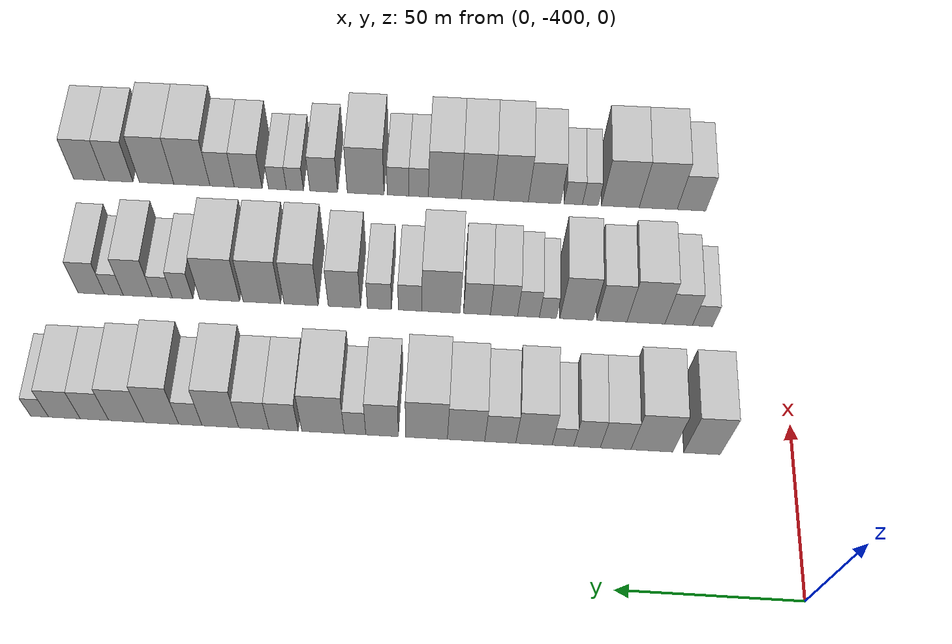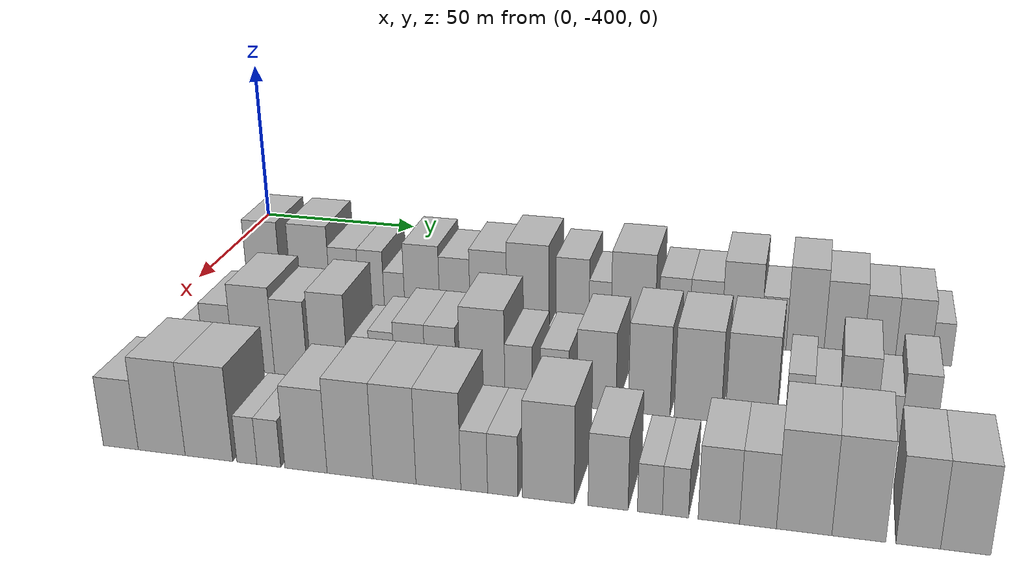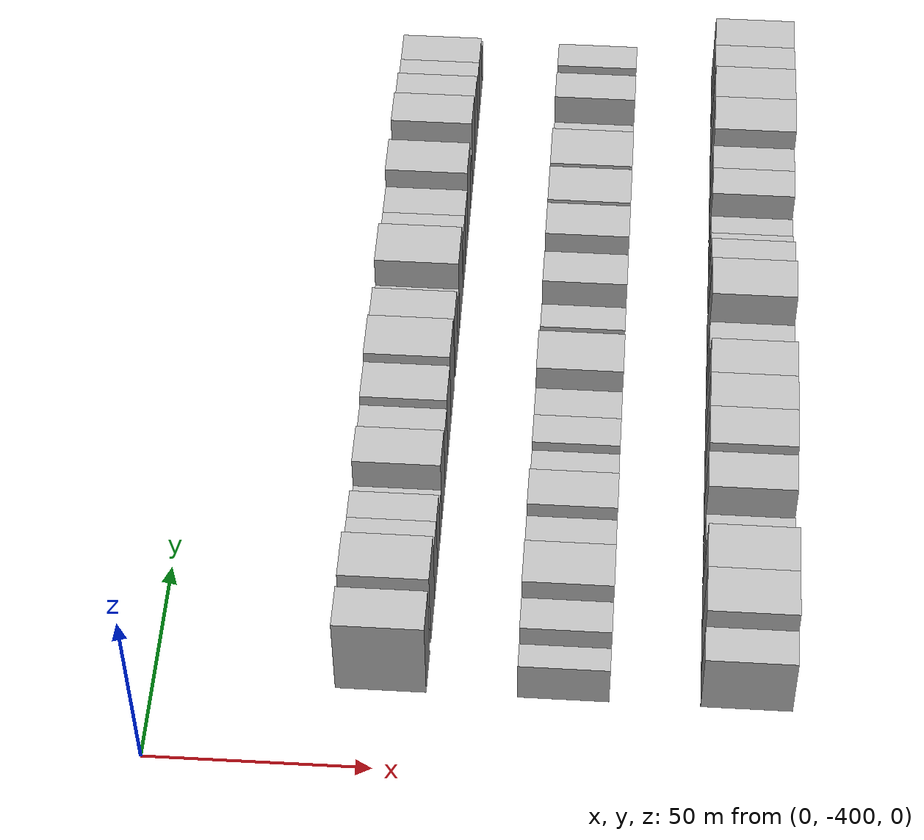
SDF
<sdf version="1.6">
 <world name="default">
  <model name="building_1">
   <static>1</static>
   <pose>50.0000 -374.9445 0 0.000000 0.000000 0.000000</pose>
   <link name="link">
    <pose>0 0 12.00 0 0 0</pose>
    <collision name="collision"><geometry><box><size>20.0000 10.1110 24.0000</size></box></geometry></collision>
    <visual name="visual">
     <cast_shadows>0</cast_shadows>
     <geometry><box><size>20.0000 10.1110 24.0000</size></box></geometry>
     <material>
      <script>
       <uri>model://HANNAS_wall/materials/scripts</uri>
       <uri>model://HANNAS_wall/materials/textures</uri>
       <name>vrc/HANNAS_wall</name>
      </script>
     </material>
    </visual>
   </link>
  </model>
  <model name="building_2">
   <static>1</static>
   <pose>50.0000 -361.0823 0 0.000000 0.000000 0.000000</pose>
   <link name="link">
    <pose>0 0 12.00 0 0 0</pose>
    <collision name="collision"><geometry><box><size>20.0000 11.6134 24.0000</size></box></geometry></collision>
    <visual name="visual">
     <cast_shadows>0</cast_shadows>
     <geometry><box><size>20.0000 11.6134 24.0000</size></box></geometry>
     <material>
      <script>
       <uri>model://HANNAS_wall/materials/scripts</uri>
       <uri>model://HANNAS_wall/materials/textures</uri>
       <name>vrc/HANNAS_wall</name>
      </script>
     </material>
    </visual>
   </link>
  </model>
  <model name="building_3">
   <static>1</static>
   <pose>50.0000 -351.0350 0 0.000000 0.000000 0.000000</pose>
   <link name="link">
    <pose>0 0 9.00 0 0 0</pose>
    <collision name="collision"><geometry><box><size>20.0000 8.4814 18.0000</size></box></geometry></collision>
    <visual name="visual">
     <cast_shadows>0</cast_shadows>
     <geometry><box><size>20.0000 8.4814 18.0000</size></box></geometry>
     <material>
      <script>
       <uri>model://HANNAS_wall/materials/scripts</uri>
       <uri>model://HANNAS_wall/materials/textures</uri>
       <name>vrc/HANNAS_wall</name>
      </script>
     </material>
    </visual>
   </link>
  </model>
  <model name="building_4">
   <static>1</static>
   <pose>50.0000 -343.1112 0 0.000000 0.000000 0.000000</pose>
   <link name="link">
    <pose>0 0 9.00 0 0 0</pose>
    <collision name="collision"><geometry><box><size>20.0000 7.3661 18.0000</size></box></geometry></collision>
    <visual name="visual">
     <cast_shadows>0</cast_shadows>
     <geometry><box><size>20.0000 7.3661 18.0000</size></box></geometry>
     <material>
      <script>
       <uri>model://HANNAS_wall/materials/scripts</uri>
       <uri>model://HANNAS_wall/materials/textures</uri>
       <name>vrc/HANNAS_wall</name>
      </script>
     </material>
    </visual>
   </link>
  </model>
  <model name="building_5">
   <static>1</static>
   <pose>50.0000 -336.4441 0 0.000000 0.000000 0.000000</pose>
   <link name="link">
    <pose>0 0 6.00 0 0 0</pose>
    <collision name="collision"><geometry><box><size>20.0000 5.9682 12.0000</size></box></geometry></collision>
    <visual name="visual">
     <cast_shadows>0</cast_shadows>
     <geometry><box><size>20.0000 5.9682 12.0000</size></box></geometry>
     <material>
      <script>
       <uri>model://HANNAS_wall/materials/scripts</uri>
       <uri>model://HANNAS_wall/materials/textures</uri>
       <name>vrc/HANNAS_wall</name>
      </script>
     </material>
    </visual>
   </link>
  </model>
  <model name="building_6">
   <static>1</static>
   <pose>50.0000 -328.4006 0 0.000000 0.000000 0.000000</pose>
   <link name="link">
    <pose>0 0 10.50 0 0 0</pose>
    <collision name="collision"><geometry><box><size>20.0000 10.1188 21.0000</size></box></geometry></collision>
    <visual name="visual">
     <cast_shadows>0</cast_shadows>
     <geometry><box><size>20.0000 10.1188 21.0000</size></box></geometry>
     <material>
      <script>
       <uri>model://HANNAS_wall/materials/scripts</uri>
       <uri>model://HANNAS_wall/materials/textures</uri>
       <name>vrc/HANNAS_wall</name>
      </script>
     </material>
    </visual>
   </link>
  </model>
  <model name="building_7">
   <static>1</static>
   <pose>50.0000 -319.0140 0 0.000000 0.000000 0.000000</pose>
   <link name="link">
    <pose>0 0 9.00 0 0 0</pose>
    <collision name="collision"><geometry><box><size>20.0000 8.6544 18.0000</size></box></geometry></collision>
    <visual name="visual">
     <cast_shadows>0</cast_shadows>
     <geometry><box><size>20.0000 8.6544 18.0000</size></box></geometry>
     <material>
      <script>
       <uri>model://HANNAS_wall/materials/scripts</uri>
       <uri>model://HANNAS_wall/materials/textures</uri>
       <name>vrc/HANNAS_wall</name>
      </script>
     </material>
    </visual>
   </link>
  </model>
  <model name="building_8">
   <static>1</static>
   <pose>50.0000 -309.4827 0 0.000000 0.000000 0.000000</pose>
   <link name="link">
    <pose>0 0 10.50 0 0 0</pose>
    <collision name="collision"><geometry><box><size>20.0000 10.4083 21.0000</size></box></geometry></collision>
    <visual name="visual">
     <cast_shadows>0</cast_shadows>
     <geometry><box><size>20.0000 10.4083 21.0000</size></box></geometry>
     <material>
      <script>
       <uri>model://HANNAS_wall/materials/scripts</uri>
       <uri>model://HANNAS_wall/materials/textures</uri>
       <name>vrc/HANNAS_wall</name>
      </script>
     </material>
    </visual>
   </link>
  </model>
  <model name="building_9">
   <static>1</static>
   <pose>50.0000 -298.4291 0 0.000000 0.000000 0.000000</pose>
   <link name="link">
    <pose>0 0 12.00 0 0 0</pose>
    <collision name="collision"><geometry><box><size>20.0000 11.6989 24.0000</size></box></geometry></collision>
    <visual name="visual">
     <cast_shadows>0</cast_shadows>
     <geometry><box><size>20.0000 11.6989 24.0000</size></box></geometry>
     <material>
      <script>
       <uri>model://HANNAS_wall/materials/scripts</uri>
       <uri>model://HANNAS_wall/materials/textures</uri>
       <name>vrc/HANNAS_wall</name>
      </script>
     </material>
    </visual>
   </link>
  </model>
  <model name="building_10">
   <static>1</static>
   <pose>50.0000 -286.0297 0 0.000000 0.000000 0.000000</pose>
   <link name="link">
    <pose>0 0 10.50 0 0 0</pose>
    <collision name="collision"><geometry><box><size>20.0000 9.0999 21.0000</size></box></geometry></collision>
    <visual name="visual">
     <cast_shadows>0</cast_shadows>
     <geometry><box><size>20.0000 9.0999 21.0000</size></box></geometry>
     <material>
      <script>
       <uri>model://HANNAS_wall/materials/scripts</uri>
       <uri>model://HANNAS_wall/materials/textures</uri>
       <name>vrc/HANNAS_wall</name>
      </script>
     </material>
    </visual>
   </link>
  </model>
  <model name="building_11">
   <static>1</static>
   <pose>50.0000 -278.4642 0 0.000000 0.000000 0.000000</pose>
   <link name="link">
    <pose>0 0 7.50 0 0 0</pose>
    <collision name="collision"><geometry><box><size>20.0000 6.0311 15.0000</size></box></geometry></collision>
    <visual name="visual">
     <cast_shadows>0</cast_shadows>
     <geometry><box><size>20.0000 6.0311 15.0000</size></box></geometry>
     <material>
      <script>
       <uri>model://HANNAS_wall/materials/scripts</uri>
       <uri>model://HANNAS_wall/materials/textures</uri>
       <name>vrc/HANNAS_wall</name>
      </script>
     </material>
    </visual>
   </link>
  </model>
  <model name="building_12">
   <static>1</static>
   <pose>50.0000 -269.5073 0 0.000000 0.000000 0.000000</pose>
   <link name="link">
    <pose>0 0 12.00 0 0 0</pose>
    <collision name="collision"><geometry><box><size>20.0000 11.8829 24.0000</size></box></geometry></collision>
    <visual name="visual">
     <cast_shadows>0</cast_shadows>
     <geometry><box><size>20.0000 11.8829 24.0000</size></box></geometry>
     <material>
      <script>
       <uri>model://HANNAS_wall/materials/scripts</uri>
       <uri>model://HANNAS_wall/materials/textures</uri>
       <name>vrc/HANNAS_wall</name>
      </script>
     </material>
    </visual>
   </link>
  </model>
  <model name="building_13">
   <static>1</static>
   <pose>50.0000 -258.4388 0 0.000000 0.000000 0.000000</pose>
   <link name="link">
    <pose>0 0 9.00 0 0 0</pose>
    <collision name="collision"><geometry><box><size>20.0000 8.2542 18.0000</size></box></geometry></collision>
    <visual name="visual">
     <cast_shadows>0</cast_shadows>
     <geometry><box><size>20.0000 8.2542 18.0000</size></box></geometry>
     <material>
      <script>
       <uri>model://HANNAS_wall/materials/scripts</uri>
       <uri>model://HANNAS_wall/materials/textures</uri>
       <name>vrc/HANNAS_wall</name>
      </script>
     </material>
    </visual>
   </link>
  </model>
  <model name="building_14">
   <static>1</static>
   <pose>50.0000 -250.0580 0 0.000000 0.000000 0.000000</pose>
   <link name="link">
    <pose>0 0 9.00 0 0 0</pose>
    <collision name="collision"><geometry><box><size>20.0000 8.5073 18.0000</size></box></geometry></collision>
    <visual name="visual">
     <cast_shadows>0</cast_shadows>
     <geometry><box><size>20.0000 8.5073 18.0000</size></box></geometry>
     <material>
      <script>
       <uri>model://HANNAS_wall/materials/scripts</uri>
       <uri>model://HANNAS_wall/materials/textures</uri>
       <name>vrc/HANNAS_wall</name>
      </script>
     </material>
    </visual>
   </link>
  </model>
  <model name="building_15">
   <static>1</static>
   <pose>50.0000 -240.6390 0 0.000000 0.000000 0.000000</pose>
   <link name="link">
    <pose>0 0 12.00 0 0 0</pose>
    <collision name="collision"><geometry><box><size>20.0000 10.3308 24.0000</size></box></geometry></collision>
    <visual name="visual">
     <cast_shadows>0</cast_shadows>
     <geometry><box><size>20.0000 10.3308 24.0000</size></box></geometry>
     <material>
      <script>
       <uri>model://HANNAS_wall/materials/scripts</uri>
       <uri>model://HANNAS_wall/materials/textures</uri>
       <name>vrc/HANNAS_wall</name>
      </script>
     </material>
    </visual>
   </link>
  </model>
  <model name="building_16">
   <static>1</static>
   <pose>50.0000 -232.1779 0 0.000000 0.000000 0.000000</pose>
   <link name="link">
    <pose>0 0 7.50 0 0 0</pose>
    <collision name="collision"><geometry><box><size>20.0000 6.5913 15.0000</size></box></geometry></collision>
    <visual name="visual">
     <cast_shadows>0</cast_shadows>
     <geometry><box><size>20.0000 6.5913 15.0000</size></box></geometry>
     <material>
      <script>
       <uri>model://HANNAS_wall/materials/scripts</uri>
       <uri>model://HANNAS_wall/materials/textures</uri>
       <name>vrc/HANNAS_wall</name>
      </script>
     </material>
    </visual>
   </link>
  </model>
  <model name="building_17">
   <static>1</static>
   <pose>50.0000 -224.0062 0 0.000000 0.000000 0.000000</pose>
   <link name="link">
    <pose>0 0 12.00 0 0 0</pose>
    <collision name="collision"><geometry><box><size>20.0000 9.7523 24.0000</size></box></geometry></collision>
    <visual name="visual">
     <cast_shadows>0</cast_shadows>
     <geometry><box><size>20.0000 9.7523 24.0000</size></box></geometry>
     <material>
      <script>
       <uri>model://HANNAS_wall/materials/scripts</uri>
       <uri>model://HANNAS_wall/materials/textures</uri>
       <name>vrc/HANNAS_wall</name>
      </script>
     </material>
    </visual>
   </link>
  </model>
  <model name="building_18">
   <static>1</static>
   <pose>50.0000 -214.1113 0 0.000000 0.000000 0.000000</pose>
   <link name="link">
    <pose>0 0 10.50 0 0 0</pose>
    <collision name="collision"><geometry><box><size>20.0000 10.0374 21.0000</size></box></geometry></collision>
    <visual name="visual">
     <cast_shadows>0</cast_shadows>
     <geometry><box><size>20.0000 10.0374 21.0000</size></box></geometry>
     <material>
      <script>
       <uri>model://HANNAS_wall/materials/scripts</uri>
       <uri>model://HANNAS_wall/materials/textures</uri>
       <name>vrc/HANNAS_wall</name>
      </script>
     </material>
    </visual>
   </link>
  </model>
  <model name="building_19">
   <static>1</static>
   <pose>50.0000 -205.0495 0 0.000000 0.000000 0.000000</pose>
   <link name="link">
    <pose>0 0 9.00 0 0 0</pose>
    <collision name="collision"><geometry><box><size>20.0000 8.0863 18.0000</size></box></geometry></collision>
    <visual name="visual">
     <cast_shadows>0</cast_shadows>
     <geometry><box><size>20.0000 8.0863 18.0000</size></box></geometry>
     <material>
      <script>
       <uri>model://HANNAS_wall/materials/scripts</uri>
       <uri>model://HANNAS_wall/materials/textures</uri>
       <name>vrc/HANNAS_wall</name>
      </script>
     </material>
    </visual>
   </link>
  </model>
  <model name="building_20">
   <static>1</static>
   <pose>50.0000 -196.5198 0 0.000000 0.000000 0.000000</pose>
   <link name="link">
    <pose>0 0 9.00 0 0 0</pose>
    <collision name="collision"><geometry><box><size>20.0000 8.9729 18.0000</size></box></geometry></collision>
    <visual name="visual">
     <cast_shadows>0</cast_shadows>
     <geometry><box><size>20.0000 8.9729 18.0000</size></box></geometry>
     <material>
      <script>
       <uri>model://HANNAS_wall/materials/scripts</uri>
       <uri>model://HANNAS_wall/materials/textures</uri>
       <name>vrc/HANNAS_wall</name>
      </script>
     </material>
    </visual>
   </link>
  </model>
  <model name="building_21">
   <static>1</static>
   <pose>50.0000 -189.4795 0 0.000000 0.000000 0.000000</pose>
   <link name="link">
    <pose>0 0 6.00 0 0 0</pose>
    <collision name="collision"><geometry><box><size>20.0000 5.1077 12.0000</size></box></geometry></collision>
    <visual name="visual">
     <cast_shadows>0</cast_shadows>
     <geometry><box><size>20.0000 5.1077 12.0000</size></box></geometry>
     <material>
      <script>
       <uri>model://HANNAS_wall/materials/scripts</uri>
       <uri>model://HANNAS_wall/materials/textures</uri>
       <name>vrc/HANNAS_wall</name>
      </script>
     </material>
    </visual>
   </link>
  </model>
  <model name="building_86">
   <static>1</static>
   <pose>90.0000 -377.0522 0 0.000000 0.000000 0.000000</pose>
   <link name="link">
    <pose>0 0 6.00 0 0 0</pose>
    <collision name="collision"><geometry><box><size>20.0000 5.8956 12.0000</size></box></geometry></collision>
    <visual name="visual">
     <cast_shadows>0</cast_shadows>
     <geometry><box><size>20.0000 5.8956 12.0000</size></box></geometry>
     <material>
      <script>
       <uri>model://HANNAS_wall/materials/scripts</uri>
       <uri>model://HANNAS_wall/materials/textures</uri>
       <name>vrc/HANNAS_wall</name>
      </script>
     </material>
    </visual>
   </link>
  </model>
  <model name="building_87">
   <static>1</static>
   <pose>90.0000 -370.0981 0 0.000000 0.000000 0.000000</pose>
   <link name="link">
    <pose>0 0 9.00 0 0 0</pose>
    <collision name="collision"><geometry><box><size>20.0000 8.0125 18.0000</size></box></geometry></collision>
    <visual name="visual">
     <cast_shadows>0</cast_shadows>
     <geometry><box><size>20.0000 8.0125 18.0000</size></box></geometry>
     <material>
      <script>
       <uri>model://HANNAS_wall/materials/scripts</uri>
       <uri>model://HANNAS_wall/materials/textures</uri>
       <name>vrc/HANNAS_wall</name>
      </script>
     </material>
    </visual>
   </link>
  </model>
  <model name="building_88">
   <static>1</static>
   <pose>90.0000 -360.5697 0 0.000000 0.000000 0.000000</pose>
   <link name="link">
    <pose>0 0 12.00 0 0 0</pose>
    <collision name="collision"><geometry><box><size>20.0000 11.0443 24.0000</size></box></geometry></collision>
    <visual name="visual">
     <cast_shadows>0</cast_shadows>
     <geometry><box><size>20.0000 11.0443 24.0000</size></box></geometry>
     <material>
      <script>
       <uri>model://HANNAS_wall/materials/scripts</uri>
       <uri>model://HANNAS_wall/materials/textures</uri>
       <name>vrc/HANNAS_wall</name>
      </script>
     </material>
    </visual>
   </link>
  </model>
  <model name="building_89">
   <static>1</static>
   <pose>90.0000 -350.5972 0 0.000000 0.000000 0.000000</pose>
   <link name="link">
    <pose>0 0 10.50 0 0 0</pose>
    <collision name="collision"><geometry><box><size>20.0000 8.9006 21.0000</size></box></geometry></collision>
    <visual name="visual">
     <cast_shadows>0</cast_shadows>
     <geometry><box><size>20.0000 8.9006 21.0000</size></box></geometry>
     <material>
      <script>
       <uri>model://HANNAS_wall/materials/scripts</uri>
       <uri>model://HANNAS_wall/materials/textures</uri>
       <name>vrc/HANNAS_wall</name>
      </script>
     </material>
    </visual>
   </link>
  </model>
  <model name="building_90">
   <static>1</static>
   <pose>90.0000 -340.2798 0 0.000000 0.000000 0.000000</pose>
   <link name="link">
    <pose>0 0 12.00 0 0 0</pose>
    <collision name="collision"><geometry><box><size>20.0000 9.7341 24.0000</size></box></geometry></collision>
    <visual name="visual">
     <cast_shadows>0</cast_shadows>
     <geometry><box><size>20.0000 9.7341 24.0000</size></box></geometry>
     <material>
      <script>
       <uri>model://HANNAS_wall/materials/scripts</uri>
       <uri>model://HANNAS_wall/materials/textures</uri>
       <name>vrc/HANNAS_wall</name>
      </script>
     </material>
    </visual>
   </link>
  </model>
  <model name="building_91">
   <static>1</static>
   <pose>90.0000 -331.9168 0 0.000000 0.000000 0.000000</pose>
   <link name="link">
    <pose>0 0 6.00 0 0 0</pose>
    <collision name="collision"><geometry><box><size>20.0000 4.9920 12.0000</size></box></geometry></collision>
    <visual name="visual">
     <cast_shadows>0</cast_shadows>
     <geometry><box><size>20.0000 4.9920 12.0000</size></box></geometry>
     <material>
      <script>
       <uri>model://HANNAS_wall/materials/scripts</uri>
       <uri>model://HANNAS_wall/materials/textures</uri>
       <name>vrc/HANNAS_wall</name>
      </script>
     </material>
    </visual>
   </link>
  </model>
  <model name="building_92">
   <static>1</static>
   <pose>90.0000 -326.2288 0 0.000000 0.000000 0.000000</pose>
   <link name="link">
    <pose>0 0 7.50 0 0 0</pose>
    <collision name="collision"><geometry><box><size>20.0000 6.3840 15.0000</size></box></geometry></collision>
    <visual name="visual">
     <cast_shadows>0</cast_shadows>
     <geometry><box><size>20.0000 6.3840 15.0000</size></box></geometry>
     <material>
      <script>
       <uri>model://HANNAS_wall/materials/scripts</uri>
       <uri>model://HANNAS_wall/materials/textures</uri>
       <name>vrc/HANNAS_wall</name>
      </script>
     </material>
    </visual>
   </link>
  </model>
  <model name="building_93">
   <static>1</static>
   <pose>90.0000 -319.0543 0 0.000000 0.000000 0.000000</pose>
   <link name="link">
    <pose>0 0 9.00 0 0 0</pose>
    <collision name="collision"><geometry><box><size>20.0000 7.9650 18.0000</size></box></geometry></collision>
    <visual name="visual">
     <cast_shadows>0</cast_shadows>
     <geometry><box><size>20.0000 7.9650 18.0000</size></box></geometry>
     <material>
      <script>
       <uri>model://HANNAS_wall/materials/scripts</uri>
       <uri>model://HANNAS_wall/materials/textures</uri>
       <name>vrc/HANNAS_wall</name>
      </script>
     </material>
    </visual>
   </link>
  </model>
  <model name="building_94">
   <static>1</static>
   <pose>90.0000 -311.1245 0 0.000000 0.000000 0.000000</pose>
   <link name="link">
    <pose>0 0 9.00 0 0 0</pose>
    <collision name="collision"><geometry><box><size>20.0000 7.8946 18.0000</size></box></geometry></collision>
    <visual name="visual">
     <cast_shadows>0</cast_shadows>
     <geometry><box><size>20.0000 7.8946 18.0000</size></box></geometry>
     <material>
      <script>
       <uri>model://HANNAS_wall/materials/scripts</uri>
       <uri>model://HANNAS_wall/materials/textures</uri>
       <name>vrc/HANNAS_wall</name>
      </script>
     </material>
    </visual>
   </link>
  </model>
  <model name="building_95">
   <static>1</static>
   <pose>90.0000 -300.5118 0 0.000000 0.000000 0.000000</pose>
   <link name="link">
    <pose>0 0 12.00 0 0 0</pose>
    <collision name="collision"><geometry><box><size>20.0000 11.3308 24.0000</size></box></geometry></collision>
    <visual name="visual">
     <cast_shadows>0</cast_shadows>
     <geometry><box><size>20.0000 11.3308 24.0000</size></box></geometry>
     <material>
      <script>
       <uri>model://HANNAS_wall/materials/scripts</uri>
       <uri>model://HANNAS_wall/materials/textures</uri>
       <name>vrc/HANNAS_wall</name>
      </script>
     </material>
    </visual>
   </link>
  </model>
  <model name="building_96">
   <static>1</static>
   <pose>90.0000 -291.4065 0 0.000000 0.000000 0.000000</pose>
   <link name="link">
    <pose>0 0 7.50 0 0 0</pose>
    <collision name="collision"><geometry><box><size>20.0000 6.8799 15.0000</size></box></geometry></collision>
    <visual name="visual">
     <cast_shadows>0</cast_shadows>
     <geometry><box><size>20.0000 6.8799 15.0000</size></box></geometry>
     <material>
      <script>
       <uri>model://HANNAS_wall/materials/scripts</uri>
       <uri>model://HANNAS_wall/materials/textures</uri>
       <name>vrc/HANNAS_wall</name>
      </script>
     </material>
    </visual>
   </link>
  </model>
  <model name="building_97">
   <static>1</static>
   <pose>90.0000 -282.4202 0 0.000000 0.000000 0.000000</pose>
   <link name="link">
    <pose>0 0 7.50 0 0 0</pose>
    <collision name="collision"><geometry><box><size>20.0000 7.0927 15.0000</size></box></geometry></collision>
    <visual name="visual">
     <cast_shadows>0</cast_shadows>
     <geometry><box><size>20.0000 7.0927 15.0000</size></box></geometry>
     <material>
      <script>
       <uri>model://HANNAS_wall/materials/scripts</uri>
       <uri>model://HANNAS_wall/materials/textures</uri>
       <name>vrc/HANNAS_wall</name>
      </script>
     </material>
    </visual>
   </link>
  </model>
  <model name="building_98">
   <static>1</static>
   <pose>90.0000 -272.1101 0 0.000000 0.000000 0.000000</pose>
   <link name="link">
    <pose>0 0 10.50 0 0 0</pose>
    <collision name="collision"><geometry><box><size>20.0000 9.5276 21.0000</size></box></geometry></collision>
    <visual name="visual">
     <cast_shadows>0</cast_shadows>
     <geometry><box><size>20.0000 9.5276 21.0000</size></box></geometry>
     <material>
      <script>
       <uri>model://HANNAS_wall/materials/scripts</uri>
       <uri>model://HANNAS_wall/materials/textures</uri>
       <name>vrc/HANNAS_wall</name>
      </script>
     </material>
    </visual>
   </link>
  </model>
  <model name="building_99">
   <static>1</static>
   <pose>90.0000 -259.3036 0 0.000000 0.000000 0.000000</pose>
   <link name="link">
    <pose>0 0 12.00 0 0 0</pose>
    <collision name="collision"><geometry><box><size>20.0000 10.0854 24.0000</size></box></geometry></collision>
    <visual name="visual">
     <cast_shadows>0</cast_shadows>
     <geometry><box><size>20.0000 10.0854 24.0000</size></box></geometry>
     <material>
      <script>
       <uri>model://HANNAS_wall/materials/scripts</uri>
       <uri>model://HANNAS_wall/materials/textures</uri>
       <name>vrc/HANNAS_wall</name>
      </script>
     </material>
    </visual>
   </link>
  </model>
  <model name="building_100">
   <static>1</static>
   <pose>90.0000 -247.6857 0 0.000000 0.000000 0.000000</pose>
   <link name="link">
    <pose>0 0 12.00 0 0 0</pose>
    <collision name="collision"><geometry><box><size>20.0000 11.1503 24.0000</size></box></geometry></collision>
    <visual name="visual">
     <cast_shadows>0</cast_shadows>
     <geometry><box><size>20.0000 11.1503 24.0000</size></box></geometry>
     <material>
      <script>
       <uri>model://HANNAS_wall/materials/scripts</uri>
       <uri>model://HANNAS_wall/materials/textures</uri>
       <name>vrc/HANNAS_wall</name>
      </script>
     </material>
    </visual>
   </link>
  </model>
  <model name="building_101">
   <static>1</static>
   <pose>90.0000 -235.1612 0 0.000000 0.000000 0.000000</pose>
   <link name="link">
    <pose>0 0 12.00 0 0 0</pose>
    <collision name="collision"><geometry><box><size>20.0000 11.8987 24.0000</size></box></geometry></collision>
    <visual name="visual">
     <cast_shadows>0</cast_shadows>
     <geometry><box><size>20.0000 11.8987 24.0000</size></box></geometry>
     <material>
      <script>
       <uri>model://HANNAS_wall/materials/scripts</uri>
       <uri>model://HANNAS_wall/materials/textures</uri>
       <name>vrc/HANNAS_wall</name>
      </script>
     </material>
    </visual>
   </link>
  </model>
  <model name="building_102">
   <static>1</static>
   <pose>90.0000 -224.1353 0 0.000000 0.000000 0.000000</pose>
   <link name="link">
    <pose>0 0 7.50 0 0 0</pose>
    <collision name="collision"><geometry><box><size>20.0000 6.1532 15.0000</size></box></geometry></collision>
    <visual name="visual">
     <cast_shadows>0</cast_shadows>
     <geometry><box><size>20.0000 6.1532 15.0000</size></box></geometry>
     <material>
      <script>
       <uri>model://HANNAS_wall/materials/scripts</uri>
       <uri>model://HANNAS_wall/materials/textures</uri>
       <name>vrc/HANNAS_wall</name>
      </script>
     </material>
    </visual>
   </link>
  </model>
  <model name="building_103">
   <static>1</static>
   <pose>90.0000 -218.1012 0 0.000000 0.000000 0.000000</pose>
   <link name="link">
    <pose>0 0 6.00 0 0 0</pose>
    <collision name="collision"><geometry><box><size>20.0000 5.9149 12.0000</size></box></geometry></collision>
    <visual name="visual">
     <cast_shadows>0</cast_shadows>
     <geometry><box><size>20.0000 5.9149 12.0000</size></box></geometry>
     <material>
      <script>
       <uri>model://HANNAS_wall/materials/scripts</uri>
       <uri>model://HANNAS_wall/materials/textures</uri>
       <name>vrc/HANNAS_wall</name>
      </script>
     </material>
    </visual>
   </link>
  </model>
  <model name="building_104">
   <static>1</static>
   <pose>90.0000 -210.7916 0 0.000000 0.000000 0.000000</pose>
   <link name="link">
    <pose>0 0 10.50 0 0 0</pose>
    <collision name="collision"><geometry><box><size>20.0000 8.7044 21.0000</size></box></geometry></collision>
    <visual name="visual">
     <cast_shadows>0</cast_shadows>
     <geometry><box><size>20.0000 8.7044 21.0000</size></box></geometry>
     <material>
      <script>
       <uri>model://HANNAS_wall/materials/scripts</uri>
       <uri>model://HANNAS_wall/materials/textures</uri>
       <name>vrc/HANNAS_wall</name>
      </script>
     </material>
    </visual>
   </link>
  </model>
  <model name="building_105">
   <static>1</static>
   <pose>90.0000 -203.6383 0 0.000000 0.000000 0.000000</pose>
   <link name="link">
    <pose>0 0 6.00 0 0 0</pose>
    <collision name="collision"><geometry><box><size>20.0000 5.6022 12.0000</size></box></geometry></collision>
    <visual name="visual">
     <cast_shadows>0</cast_shadows>
     <geometry><box><size>20.0000 5.6022 12.0000</size></box></geometry>
     <material>
      <script>
       <uri>model://HANNAS_wall/materials/scripts</uri>
       <uri>model://HANNAS_wall/materials/textures</uri>
       <name>vrc/HANNAS_wall</name>
      </script>
     </material>
    </visual>
   </link>
  </model>
  <model name="building_106">
   <static>1</static>
   <pose>90.0000 -196.8834 0 0.000000 0.000000 0.000000</pose>
   <link name="link">
    <pose>0 0 9.00 0 0 0</pose>
    <collision name="collision"><geometry><box><size>20.0000 7.9076 18.0000</size></box></geometry></collision>
    <visual name="visual">
     <cast_shadows>0</cast_shadows>
     <geometry><box><size>20.0000 7.9076 18.0000</size></box></geometry>
     <material>
      <script>
       <uri>model://HANNAS_wall/materials/scripts</uri>
       <uri>model://HANNAS_wall/materials/textures</uri>
       <name>vrc/HANNAS_wall</name>
      </script>
     </material>
    </visual>
   </link>
  </model>
  <model name="building_170">
   <static>1</static>
   <pose>130.0000 -375.6233 0 0.000000 0.000000 0.000000</pose>
   <link name="link">
    <pose>0 0 9.00 0 0 0</pose>
    <collision name="collision"><geometry><box><size>20.0000 8.7534 18.0000</size></box></geometry></collision>
    <visual name="visual">
     <cast_shadows>0</cast_shadows>
     <geometry><box><size>20.0000 8.7534 18.0000</size></box></geometry>
     <material>
      <script>
       <uri>model://HANNAS_wall/materials/scripts</uri>
       <uri>model://HANNAS_wall/materials/textures</uri>
       <name>vrc/HANNAS_wall</name>
      </script>
     </material>
    </visual>
   </link>
  </model>
  <model name="building_171">
   <static>1</static>
   <pose>130.0000 -365.4360 0 0.000000 0.000000 0.000000</pose>
   <link name="link">
    <pose>0 0 12.00 0 0 0</pose>
    <collision name="collision"><geometry><box><size>20.0000 11.6212 24.0000</size></box></geometry></collision>
    <visual name="visual">
     <cast_shadows>0</cast_shadows>
     <geometry><box><size>20.0000 11.6212 24.0000</size></box></geometry>
     <material>
      <script>
       <uri>model://HANNAS_wall/materials/scripts</uri>
       <uri>model://HANNAS_wall/materials/textures</uri>
       <name>vrc/HANNAS_wall</name>
      </script>
     </material>
    </visual>
   </link>
  </model>
  <model name="building_172">
   <static>1</static>
   <pose>130.0000 -353.8300 0 0.000000 0.000000 0.000000</pose>
   <link name="link">
    <pose>0 0 12.00 0 0 0</pose>
    <collision name="collision"><geometry><box><size>20.0000 11.5907 24.0000</size></box></geometry></collision>
    <visual name="visual">
     <cast_shadows>0</cast_shadows>
     <geometry><box><size>20.0000 11.5907 24.0000</size></box></geometry>
     <material>
      <script>
       <uri>model://HANNAS_wall/materials/scripts</uri>
       <uri>model://HANNAS_wall/materials/textures</uri>
       <name>vrc/HANNAS_wall</name>
      </script>
     </material>
    </visual>
   </link>
  </model>
  <model name="building_173">
   <static>1</static>
   <pose>130.0000 -344.6102 0 0.000000 0.000000 0.000000</pose>
   <link name="link">
    <pose>0 0 6.00 0 0 0</pose>
    <collision name="collision"><geometry><box><size>20.0000 4.8489 12.0000</size></box></geometry></collision>
    <visual name="visual">
     <cast_shadows>0</cast_shadows>
     <geometry><box><size>20.0000 4.8489 12.0000</size></box></geometry>
     <material>
      <script>
       <uri>model://HANNAS_wall/materials/scripts</uri>
       <uri>model://HANNAS_wall/materials/textures</uri>
       <name>vrc/HANNAS_wall</name>
      </script>
     </material>
    </visual>
   </link>
  </model>
  <model name="building_174">
   <static>1</static>
   <pose>130.0000 -339.3433 0 0.000000 0.000000 0.000000</pose>
   <link name="link">
    <pose>0 0 6.00 0 0 0</pose>
    <collision name="collision"><geometry><box><size>20.0000 5.6849 12.0000</size></box></geometry></collision>
    <visual name="visual">
     <cast_shadows>0</cast_shadows>
     <geometry><box><size>20.0000 5.6849 12.0000</size></box></geometry>
     <material>
      <script>
       <uri>model://HANNAS_wall/materials/scripts</uri>
       <uri>model://HANNAS_wall/materials/textures</uri>
       <name>vrc/HANNAS_wall</name>
      </script>
     </material>
    </visual>
   </link>
  </model>
  <model name="building_175">
   <static>1</static>
   <pose>130.0000 -330.5122 0 0.000000 0.000000 0.000000</pose>
   <link name="link">
    <pose>0 0 10.50 0 0 0</pose>
    <collision name="collision"><geometry><box><size>20.0000 9.9774 21.0000</size></box></geometry></collision>
    <visual name="visual">
     <cast_shadows>0</cast_shadows>
     <geometry><box><size>20.0000 9.9774 21.0000</size></box></geometry>
     <material>
      <script>
       <uri>model://HANNAS_wall/materials/scripts</uri>
       <uri>model://HANNAS_wall/materials/textures</uri>
       <name>vrc/HANNAS_wall</name>
      </script>
     </material>
    </visual>
   </link>
  </model>
  <model name="building_176">
   <static>1</static>
   <pose>130.0000 -320.1713 0 0.000000 0.000000 0.000000</pose>
   <link name="link">
    <pose>0 0 12.00 0 0 0</pose>
    <collision name="collision"><geometry><box><size>20.0000 10.7044 24.0000</size></box></geometry></collision>
    <visual name="visual">
     <cast_shadows>0</cast_shadows>
     <geometry><box><size>20.0000 10.7044 24.0000</size></box></geometry>
     <material>
      <script>
       <uri>model://HANNAS_wall/materials/scripts</uri>
       <uri>model://HANNAS_wall/materials/textures</uri>
       <name>vrc/HANNAS_wall</name>
      </script>
     </material>
    </visual>
   </link>
  </model>
  <model name="building_177">
   <static>1</static>
   <pose>130.0000 -309.8678 0 0.000000 0.000000 0.000000</pose>
   <link name="link">
    <pose>0 0 12.00 0 0 0</pose>
    <collision name="collision"><geometry><box><size>20.0000 9.9026 24.0000</size></box></geometry></collision>
    <visual name="visual">
     <cast_shadows>0</cast_shadows>
     <geometry><box><size>20.0000 9.9026 24.0000</size></box></geometry>
     <material>
      <script>
       <uri>model://HANNAS_wall/materials/scripts</uri>
       <uri>model://HANNAS_wall/materials/textures</uri>
       <name>vrc/HANNAS_wall</name>
      </script>
     </material>
    </visual>
   </link>
  </model>
  <model name="building_178">
   <static>1</static>
   <pose>130.0000 -299.8238 0 0.000000 0.000000 0.000000</pose>
   <link name="link">
    <pose>0 0 12.00 0 0 0</pose>
    <collision name="collision"><geometry><box><size>20.0000 10.1853 24.0000</size></box></geometry></collision>
    <visual name="visual">
     <cast_shadows>0</cast_shadows>
     <geometry><box><size>20.0000 10.1853 24.0000</size></box></geometry>
     <material>
      <script>
       <uri>model://HANNAS_wall/materials/scripts</uri>
       <uri>model://HANNAS_wall/materials/textures</uri>
       <name>vrc/HANNAS_wall</name>
      </script>
     </material>
    </visual>
   </link>
  </model>
  <model name="building_179">
   <static>1</static>
   <pose>130.0000 -291.7275 0 0.000000 0.000000 0.000000</pose>
   <link name="link">
    <pose>0 0 7.50 0 0 0</pose>
    <collision name="collision"><geometry><box><size>20.0000 6.0073 15.0000</size></box></geometry></collision>
    <visual name="visual">
     <cast_shadows>0</cast_shadows>
     <geometry><box><size>20.0000 6.0073 15.0000</size></box></geometry>
     <material>
      <script>
       <uri>model://HANNAS_wall/materials/scripts</uri>
       <uri>model://HANNAS_wall/materials/textures</uri>
       <name>vrc/HANNAS_wall</name>
      </script>
     </material>
    </visual>
   </link>
  </model>
  <model name="building_180">
   <static>1</static>
   <pose>130.0000 -285.3462 0 0.000000 0.000000 0.000000</pose>
   <link name="link">
    <pose>0 0 7.50 0 0 0</pose>
    <collision name="collision"><geometry><box><size>20.0000 6.7554 15.0000</size></box></geometry></collision>
    <visual name="visual">
     <cast_shadows>0</cast_shadows>
     <geometry><box><size>20.0000 6.7554 15.0000</size></box></geometry>
     <material>
      <script>
       <uri>model://HANNAS_wall/materials/scripts</uri>
       <uri>model://HANNAS_wall/materials/textures</uri>
       <name>vrc/HANNAS_wall</name>
      </script>
     </material>
    </visual>
   </link>
  </model>
  <model name="building_181">
   <static>1</static>
   <pose>130.0000 -275.2774 0 0.000000 0.000000 0.000000</pose>
   <link name="link">
    <pose>0 0 12.00 0 0 0</pose>
    <collision name="collision"><geometry><box><size>20.0000 11.3821 24.0000</size></box></geometry></collision>
    <visual name="visual">
     <cast_shadows>0</cast_shadows>
     <geometry><box><size>20.0000 11.3821 24.0000</size></box></geometry>
     <material>
      <script>
       <uri>model://HANNAS_wall/materials/scripts</uri>
       <uri>model://HANNAS_wall/materials/textures</uri>
       <name>vrc/HANNAS_wall</name>
      </script>
     </material>
    </visual>
   </link>
  </model>
  <model name="building_182">
   <static>1</static>
   <pose>130.0000 -262.2811 0 0.000000 0.000000 0.000000</pose>
   <link name="link">
    <pose>0 0 9.00 0 0 0</pose>
    <collision name="collision"><geometry><box><size>20.0000 8.6106 18.0000</size></box></geometry></collision>
    <visual name="visual">
     <cast_shadows>0</cast_shadows>
     <geometry><box><size>20.0000 8.6106 18.0000</size></box></geometry>
     <material>
      <script>
       <uri>model://HANNAS_wall/materials/scripts</uri>
       <uri>model://HANNAS_wall/materials/textures</uri>
       <name>vrc/HANNAS_wall</name>
      </script>
     </material>
    </visual>
   </link>
  </model>
  <model name="building_183">
   <static>1</static>
   <pose>130.0000 -253.3141 0 0.000000 0.000000 0.000000</pose>
   <link name="link">
    <pose>0 0 6.00 0 0 0</pose>
    <collision name="collision"><geometry><box><size>20.0000 5.3234 12.0000</size></box></geometry></collision>
    <visual name="visual">
     <cast_shadows>0</cast_shadows>
     <geometry><box><size>20.0000 5.3234 12.0000</size></box></geometry>
     <material>
      <script>
       <uri>model://HANNAS_wall/materials/scripts</uri>
       <uri>model://HANNAS_wall/materials/textures</uri>
       <name>vrc/HANNAS_wall</name>
      </script>
     </material>
    </visual>
   </link>
  </model>
  <model name="building_184">
   <static>1</static>
   <pose>130.0000 -247.8796 0 0.000000 0.000000 0.000000</pose>
   <link name="link">
    <pose>0 0 6.00 0 0 0</pose>
    <collision name="collision"><geometry><box><size>20.0000 5.5458 12.0000</size></box></geometry></collision>
    <visual name="visual">
     <cast_shadows>0</cast_shadows>
     <geometry><box><size>20.0000 5.5458 12.0000</size></box></geometry>
     <material>
      <script>
       <uri>model://HANNAS_wall/materials/scripts</uri>
       <uri>model://HANNAS_wall/materials/textures</uri>
       <name>vrc/HANNAS_wall</name>
      </script>
     </material>
    </visual>
   </link>
  </model>
  <model name="building_185">
   <static>1</static>
   <pose>130.0000 -238.7644 0 0.000000 0.000000 0.000000</pose>
   <link name="link">
    <pose>0 0 9.00 0 0 0</pose>
    <collision name="collision"><geometry><box><size>20.0000 8.6845 18.0000</size></box></geometry></collision>
    <visual name="visual">
     <cast_shadows>0</cast_shadows>
     <geometry><box><size>20.0000 8.6845 18.0000</size></box></geometry>
     <material>
      <script>
       <uri>model://HANNAS_wall/materials/scripts</uri>
       <uri>model://HANNAS_wall/materials/textures</uri>
       <name>vrc/HANNAS_wall</name>
      </script>
     </material>
    </visual>
   </link>
  </model>
  <model name="building_186">
   <static>1</static>
   <pose>130.0000 -230.6306 0 0.000000 0.000000 0.000000</pose>
   <link name="link">
    <pose>0 0 9.00 0 0 0</pose>
    <collision name="collision"><geometry><box><size>20.0000 7.5831 18.0000</size></box></geometry></collision>
    <visual name="visual">
     <cast_shadows>0</cast_shadows>
     <geometry><box><size>20.0000 7.5831 18.0000</size></box></geometry>
     <material>
      <script>
       <uri>model://HANNAS_wall/materials/scripts</uri>
       <uri>model://HANNAS_wall/materials/textures</uri>
       <name>vrc/HANNAS_wall</name>
      </script>
     </material>
    </visual>
   </link>
  </model>
  <model name="building_187">
   <static>1</static>
   <pose>130.0000 -221.1933 0 0.000000 0.000000 0.000000</pose>
   <link name="link">
    <pose>0 0 12.00 0 0 0</pose>
    <collision name="collision"><geometry><box><size>20.0000 11.2914 24.0000</size></box></geometry></collision>
    <visual name="visual">
     <cast_shadows>0</cast_shadows>
     <geometry><box><size>20.0000 11.2914 24.0000</size></box></geometry>
     <material>
      <script>
       <uri>model://HANNAS_wall/materials/scripts</uri>
       <uri>model://HANNAS_wall/materials/textures</uri>
       <name>vrc/HANNAS_wall</name>
      </script>
     </material>
    </visual>
   </link>
  </model>
  <model name="building_188">
   <static>1</static>
   <pose>130.0000 -210.1392 0 0.000000 0.000000 0.000000</pose>
   <link name="link">
    <pose>0 0 12.00 0 0 0</pose>
    <collision name="collision"><geometry><box><size>20.0000 10.8168 24.0000</size></box></geometry></collision>
    <visual name="visual">
     <cast_shadows>0</cast_shadows>
     <geometry><box><size>20.0000 10.8168 24.0000</size></box></geometry>
     <material>
      <script>
       <uri>model://HANNAS_wall/materials/scripts</uri>
       <uri>model://HANNAS_wall/materials/textures</uri>
       <name>vrc/HANNAS_wall</name>
      </script>
     </material>
    </visual>
   </link>
  </model>
  <model name="building_189">
   <static>1</static>
   <pose>130.0000 -198.3250 0 0.000000 0.000000 0.000000</pose>
   <link name="link">
    <pose>0 0 10.50 0 0 0</pose>
    <collision name="collision"><geometry><box><size>20.0000 8.8115 21.0000</size></box></geometry></collision>
    <visual name="visual">
     <cast_shadows>0</cast_shadows>
     <geometry><box><size>20.0000 8.8115 21.0000</size></box></geometry>
     <material>
      <script>
       <uri>model://HANNAS_wall/materials/scripts</uri>
       <uri>model://HANNAS_wall/materials/textures</uri>
       <name>vrc/HANNAS_wall</name>
      </script>
     </material>
    </visual>
   </link>
  </model>
  <model name="building_190">
   <static>1</static>
   <pose>130.0000 -189.0266 0 0.000000 0.000000 0.000000</pose>
   <link name="link">
    <pose>0 0 10.50 0 0 0</pose>
    <collision name="collision"><geometry><box><size>20.0000 9.7854 21.0000</size></box></geometry></collision>
    <visual name="visual">
     <cast_shadows>0</cast_shadows>
     <geometry><box><size>20.0000 9.7854 21.0000</size></box></geometry>
     <material>
      <script>
       <uri>model://HANNAS_wall/materials/scripts</uri>
       <uri>model://HANNAS_wall/materials/textures</uri>
       <name>vrc/HANNAS_wall</name>
      </script>
     </material>
    </visual>
   </link>
  </model>
 </world>
</sdf>
